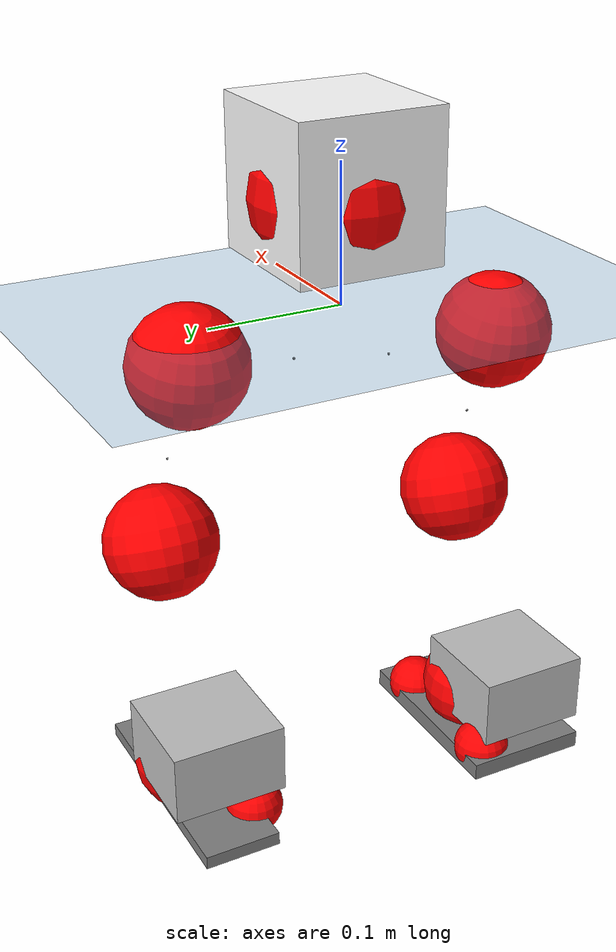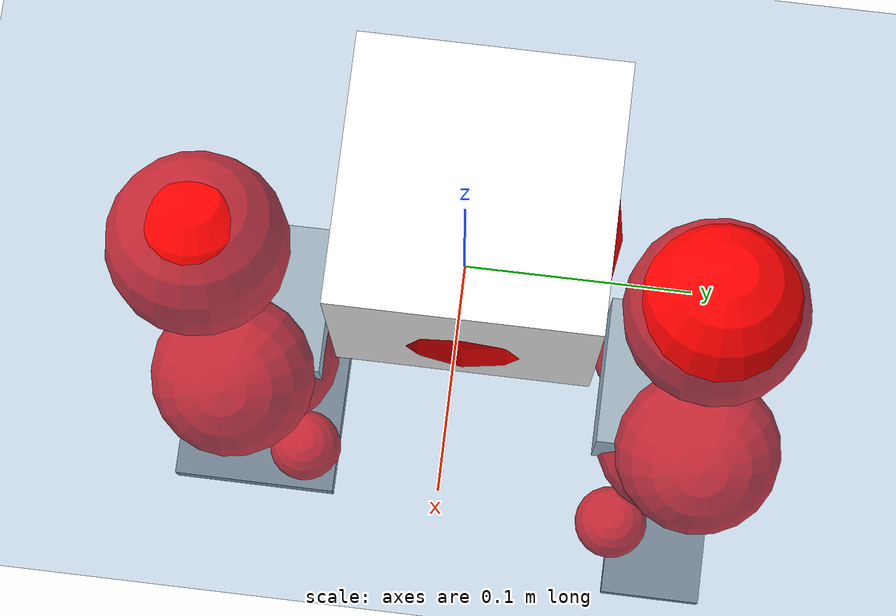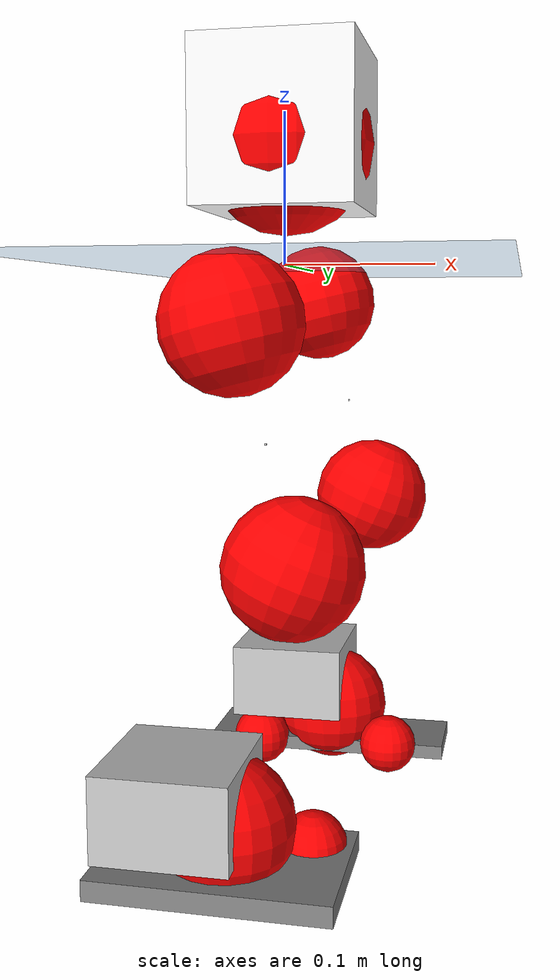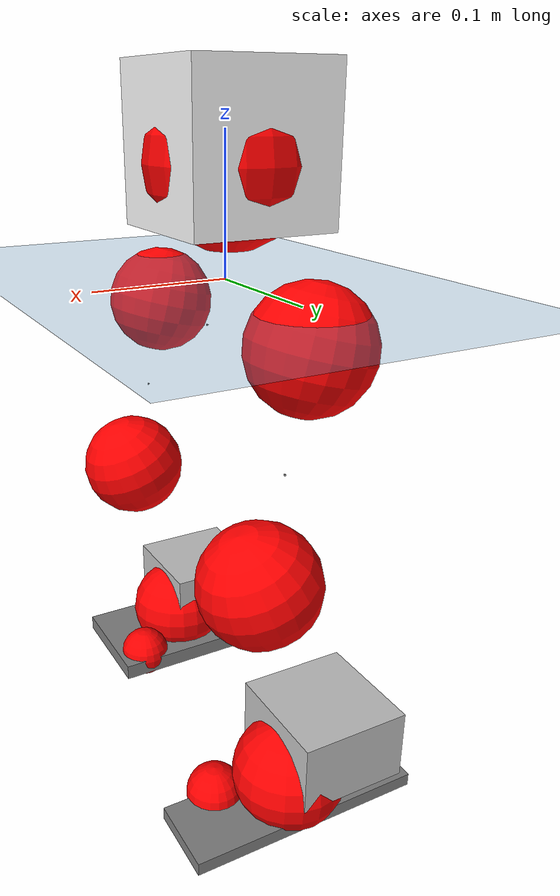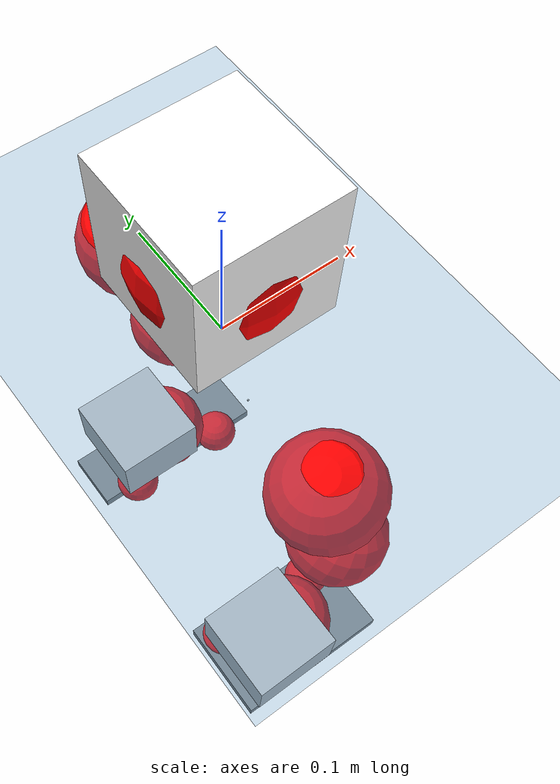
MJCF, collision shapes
<mujoco model="pi_12dof_release_v1">
  <compiler angle="radian" assetdir="assets" balanceinertia="true" inertiafromgeom="false"/>

  <option timestep="0.005" density="1.2" viscosity="2e-05"/>

  <size nkey="1"/>

  <visual>
    <quality shadowsize="8192"/>
    <map shadowclip="0.5"/>
  </visual>

  <default>
    <default class="/">
      <joint armature="0.01" damping="0.01" frictionloss="0.01"/>
      <geom contype="0" conaffinity="0" group="1" solref="-1000 -80"/>
      <site size="0.01 0.005 0.005" group="5"/>
      <general forcelimited="true" biastype="affine" gainprm="20" biasprm="0 -20 -0.5"/>
      <default class="foot">
        <geom size="0.0845 0.036 0.005" type="box" condim="6" group="4" priority="1" friction="0.9 0.2 0.2" solimp="0.015 1 0.005"/>
      </default>
      <default class="reward_collision_sphere">
        <geom group="5" rgba="1 0 0 1"/>
      </default>
    </default>
  </default>

  <asset>
    <texture type="skybox" colorspace="auto" name="//unnamed_texture_0" builtin="gradient" rgb1="0.95 0.95 0.95" rgb2="0.95 0.95 0.95" width="100" height="600"/>
    <texture type="2d" colorspace="auto" name="texplane" builtin="checker" rgb1="0.345 0.575 0.748" rgb2="0.345 0.575 0.748" markrgb="1 1 1" width="512" height="512"/>
    <material name="MatPlane" class="/" texture="texplane" texuniform="true" texrepeat="2 2" specular="0.9"/>
    <mesh name="baselink_1" class="/" file="baselink_1.STL"/>
    <mesh name="r_hip_pitch_link" class="/" file="r_hip_pitch_link.STL"/>
    <mesh name="r_hip_roll_link" class="/" file="r_hip_roll_link.STL"/>
    <mesh name="r_thigh_link" class="/" file="r_thigh_link.STL"/>
    <mesh name="r_calf_link" class="/" file="r_calf_link.STL"/>
    <mesh name="r_ankle_pitch_link" class="/" file="r_ankle_pitch_link.STL"/>
    <mesh name="r_ankle_roll_link" class="/" file="r_ankle_roll_link.STL"/>
    <mesh name="l_hip_pitch_link" class="/" file="l_hip_pitch_link.STL"/>
    <mesh name="l_hip_roll_link" class="/" file="l_hip_roll_link.STL"/>
    <mesh name="l_thigh_link" class="/" file="l_thigh_link.STL"/>
    <mesh name="l_calf_link" class="/" file="l_calf_link.STL"/>
    <mesh name="l_ankle_pitch_link" class="/" file="l_ankle_pitch_link.STL"/>
    <mesh name="l_ankle_roll_link" class="/" file="l_ankle_roll_link.STL"/>
  </asset>

  <worldbody>
    <geom name="floor" class="/" size="100 100 0.125" type="plane" group="0" material="MatPlane"/>
    <light name="toplight_shadow" class="/" pos="0 0 5" dir="0.0990148 0.0990148 -0.990148" type="directional" ambient="0.04 0.04 0.04" diffuse="0.55 0.55 0.55" specular="0.12 0.12 0.12"/>
    <light name="toplight_fill" class="/" pos="0 0 5" dir="0.0990148 0.0990148 -0.990148" type="directional" castshadow="false" ambient="0.04 0.04 0.04" diffuse="0.3 0.3 0.3" specular="0.08 0.08 0.08"/>
    <body name="trunk" pos="-0.000100736 0.00528434 0.00203989" quat="1 8.31009e-05 -0.000123856 8.47402e-07">
      <inertial pos="0.00223496 0.00588256 0.0438987" quat="0.719385 0.00274226 -0.0251503 0.694151" mass="2.70624" diaginertia="0.00224771 0.0453642 0.0064492"/>
      <joint name="//unnamed_joint_0" type="free"/>
      <geom name="//unnamed_geom_1" class="/" type="mesh" density="0" rgba="1 1 1 1" mesh="baselink_1"/>
      <geom name="//unnamed_geom_2" class="/" size="0.0535558 0.0535558 0.0535558" pos="0 0 0.0872439" type="box" rgba="1 1 1 1"/>
      <geom name="//unnamed_geom_3" class="reward_collision_sphere" size="0.0589113" pos="0 0 0.0763384"/>
      <site name="imu" class="/" pos="-0.0248053 -0.0135548 0.0263465" size="0.0107112"/>
      <camera name="track" class="/" pos="0 -2.76135 0" quat="0.707107 0.707107 0 0" mode="trackcom"/>
      <camera name="ego_camera" class="/" pos="0.055659 0 0.196299" quat="-0.5 -0.5 0.5 0.5"/>
      <body name="r_hip_pitch_link" pos="-0.00379758 -0.041513 -0.0435352" quat="0.992293 0.00271123 -0.123883 -0.000547888">
        <inertial pos="-0.000237987 -0.0773556 -0.00214442" quat="-0.0149089 0.704389 -0.0194734 0.70939" mass="0.475386" diaginertia="2.43795e-05 0.000534043 0.00012536"/>
        <joint name="r_hip_pitch_joint" class="/" pos="0 0 0" axis="-0.000164786 -0.999992 0.00404815" stiffness="0.00456527" range="-1.74818 1.29953" armature="0.0113932" damping="0.0148055" frictionloss="0.0102436"/>
        <geom name="//unnamed_geom_4" class="/" type="mesh" density="0" rgba="0.75294 0.75294 0.75294 1" mesh="r_hip_pitch_link"/>
        <geom name="//unnamed_geom_5" class="/" size="0.000535558 0.000535558 0.000535558" type="box" rgba="0.75294 0.75294 0.75294 1"/>
        <body name="r_hip_roll_link" pos="-0.000110111 -0.0878378 0.00370247" quat="0.999998 4.49078e-05 -0.00196399 0.000974636">
          <inertial pos="-0.0056122 -0.00274719 -0.0691635" quat="0.707333 -0.0482457 -0.0948029 0.698831" mass="0.477601" diaginertia="7.89484e-05 0.00141676 0.000202106"/>
          <joint name="r_hip_roll_joint" class="/" pos="0 0 0" axis="-0.999825 -0.0186966 0.000238471" stiffness="0.0150358" range="-0.144273 0.377378" armature="0.0129325" damping="0.0667577" frictionloss="0.009646"/>
          <geom name="//unnamed_geom_6" class="/" type="mesh" density="0" rgba="0.75294 0.75294 0.75294 1" mesh="r_hip_roll_link"/>
          <geom name="//unnamed_geom_7" class="/" size="0.000535558 0.000535558 0.000535558" type="box" rgba="0.75294 0.75294 0.75294 1"/>
          <geom name="//unnamed_geom_8" class="reward_collision_sphere" size="0.0428446"/>
          <body name="r_thigh_link" pos="-0.000164827 0.00774148 -0.0723706" quat="0.999999 -0.000609727 0.000981619 2.21219e-05">
            <inertial pos="-0.00359001 0.00183087 -0.0428988" quat="0.737259 0.67561 -0.000156349 -9.23433e-05" mass="0.135497" diaginertia="2.99914e-05 0.00042728 9.91256e-05"/>
            <joint name="r_thigh_joint" class="/" pos="0 0 0" axis="0.014588 0.00179373 -0.999892" stiffness="0.0139254" range="-0.21615 0.580668" armature="0.0113838" damping="0.0103526" frictionloss="0.0111366"/>
            <geom name="//unnamed_geom_9" class="/" type="mesh" density="0" rgba="0.75294 0.75294 0.75294 1" mesh="r_thigh_link"/>
            <geom name="//unnamed_geom_10" class="/" size="0.000535558 0.000535558 0.000535558" type="box" rgba="0.75294 0.75294 0.75294 1"/>
            <body name="r_calf_link" pos="-0.00197631 -0.00192019 -0.0742662" quat="0.947652 -1.04767e-06 0.319305 -2.12075e-06">
              <inertial pos="8.50997e-05 -0.000379144 -0.0751199" quat="0.999902 -4.48252e-05 0.000984575 0.0139322" mass="1.11229" diaginertia="0.000810452 0.0202101 0.000256687"/>
              <joint name="r_calf_joint" class="/" pos="0 0 0" axis="-0.00756402 -0.99991 0.0110649" stiffness="0.00956854" range="-1.84401 0.603533" armature="0.0103292" damping="0.00347256" frictionloss="0.0096727"/>
              <geom name="//unnamed_geom_11" class="/" type="mesh" density="0" rgba="0.75294 0.75294 0.75294 1" mesh="r_calf_link"/>
              <geom name="//unnamed_geom_12" class="/" size="0.000535558 0.000535558 0.000535558" type="box" rgba="0.75294 0.75294 0.75294 1"/>
              <geom name="//unnamed_geom_13" class="reward_collision_sphere" size="0.0428446"/>
              <body name="r_ankle_pitch_link" pos="-0.00806355 -0.00920395 -0.156098" quat="0.980016 0.000927837 -0.198919 0.000161483">
                <inertial pos="0.00536903 0.0140525 -0.00254125" quat="-0.00978309 0.700328 -0.00504118 0.713736" mass="0.188746" diaginertia="6.56216e-05 0.00102283 0.000172194"/>
                <joint name="r_ankle_pitch_joint" class="/" pos="0 0 0" axis="-0.0187743 -0.999184 0.0357623" stiffness="0.00280624" range="-1.33322 0.343314" armature="0.0116157" damping="0" frictionloss="0.0109638"/>
                <geom name="//unnamed_geom_14" class="/" type="mesh" density="0" rgba="0.75294 0.75294 0.75294 1" mesh="r_ankle_pitch_link"/>
                <geom name="//unnamed_geom_15" class="/" size="0.0417735 0.0428446 0.0267779" type="box" rgba="0.75294 0.75294 0.75294 1"/>
                <body name="r_ankle_roll_link" pos="0.0643381 0.00695265 0.00370825" quat="0.999995 0.00157695 0.000478611 -0.00285723">
                  <inertial pos="-0.0181654 0.000894825 -0.0199257" quat="0.551971 0.442587 0.427348 0.562866" mass="0.654342" diaginertia="0.000258601 0.00515661 0.000437988"/>
                  <joint name="r_ankle_roll_joint" class="/" pos="0 0 0" axis="-0.999997 0.00221758 -0.00114108" range="0.0244453 0.168988" armature="0.0109806" damping="0" frictionloss="0.0118423"/>
                  <geom name="//unnamed_geom_16" class="/" type="mesh" density="0" rgba="0.75294 0.75294 0.75294 1" mesh="r_ankle_roll_link"/>
                  <geom name="//unnamed_geom_17" class="/" type="mesh" rgba="0.75294 0.75294 0.75294 1" mesh="r_ankle_roll_link"/>
                  <geom name="right_foot" class="foot" size="0.0745675 0.0472503 0.00652482" pos="-0.0378481 0 -0.0479842"/>
                  <geom name="//unnamed_geom_19" class="reward_collision_sphere" size="0.0428446" pos="-0.037106 0 -0.021811"/>
                  <geom name="//unnamed_geom_20" class="reward_collision_sphere" size="0.0214223" pos="0.0111318 0.0276135 -0.043622"/>
                  <geom name="//unnamed_geom_21" class="reward_collision_sphere" size="0.0214223" pos="-0.0890544 0.0276135 -0.043622"/>
                  <site name="right_foot" class="foot" pos="-0.0378481 0 -0.0479842" size="0.0107112"/>
                </body>
              </body>
            </body>
          </body>
        </body>
      </body>
      <body name="l_hip_pitch_link" pos="0.0013387 0.031036 -0.0347672" quat="0.992203 5.63698e-05 -0.124632 -2.88337e-05">
        <inertial pos="0.00132836 0.0810831 -0.00264526" quat="-0.0394994 0.704726 0.0309247 0.707704" mass="0.474705" diaginertia="2.83902e-05 0.000519115 0.000152604"/>
        <joint name="l_hip_pitch_joint" class="/" pos="0 0 0" axis="0.000115885 1 0.000246999" range="-1.23796 1.74048" armature="0.00990548" damping="0.0326244" frictionloss="0.00860411"/>
        <geom name="//unnamed_geom_22" class="/" type="mesh" density="0" rgba="0.75294 0.75294 0.75294 1" mesh="l_hip_pitch_link"/>
        <geom name="//unnamed_geom_23" class="/" size="0.000535558 0.000535558 0.000535558" type="box" rgba="0.75294 0.75294 0.75294 1"/>
        <body name="l_hip_roll_link" pos="0.00322999 0.0781457 0.00859796" quat="1 9.3425e-05 -0.000173505 9.27123e-05">
          <inertial pos="0.00322187 -0.00178909 -0.0581526" quat="0.700857 -0.0810267 -0.0904539 0.702888" mass="0.417496" diaginertia="7.386e-05 0.0013656 0.000191915"/>
          <joint name="l_hip_roll_joint" class="/" pos="0 0 0" axis="-0.999607 0.0046148 0.0276377" stiffness="0.0039691" range="-0.339586 0.115028" armature="0.00756809" damping="0.0118577" frictionloss="0.0104272"/>
          <geom name="//unnamed_geom_24" class="/" type="mesh" density="0" rgba="0.75294 0.75294 0.75294 1" mesh="l_hip_roll_link"/>
          <geom name="//unnamed_geom_25" class="/" size="0.000535558 0.000535558 0.000535558" type="box" rgba="0.75294 0.75294 0.75294 1"/>
          <geom name="//unnamed_geom_26" class="reward_collision_sphere" size="0.0428446"/>
          <body name="l_thigh_link" pos="0.00289319 0.00947656 -0.0783588" quat="1 -0.000178516 -0.000204639 0.000107533">
            <inertial pos="-0.000534821 -0.00283704 -0.0542648" quat="0.677867 0.735131 -0.00358004 0.0081269" mass="0.127731" diaginertia="2.47625e-05 0.000445524 8.51866e-05"/>
            <joint name="l_thigh_joint" class="/" pos="0 0 0" axis="-0.000343317 -0.00036872 -1" range="-0.567829 0.291951" armature="0.0125307" damping="0" frictionloss="0.01101"/>
            <geom name="//unnamed_geom_27" class="/" type="mesh" density="0" rgba="0.75294 0.75294 0.75294 1" mesh="l_thigh_link"/>
            <geom name="//unnamed_geom_28" class="/" size="0.000535558 0.000535558 0.000535558" type="box" rgba="0.75294 0.75294 0.75294 1"/>
            <body name="l_calf_link" pos="-0.000965548 0.00138798 -0.0760862" quat="0.947217 -0.000568538 0.320579 -0.00293263">
              <inertial pos="0.000849509 -0.00109229 -0.0723071" quat="0.999992 0.00111138 -0.00319011 0.00217148" mass="0.987075" diaginertia="0.000717275 0.0168355 0.000234864"/>
              <joint name="l_calf_joint" class="/" pos="0 0 0" axis="-0.0152766 0.999832 -0.0101582" stiffness="0.00131736" range="-0.628833 1.66967" armature="0.0109607" damping="0.0102942" frictionloss="0.0105712"/>
              <geom name="//unnamed_geom_29" class="/" type="mesh" density="0" rgba="0.75294 0.75294 0.75294 1" mesh="l_calf_link"/>
              <geom name="//unnamed_geom_30" class="/" size="0.000535558 0.000535558 0.000535558" type="box" rgba="0.75294 0.75294 0.75294 1"/>
              <geom name="//unnamed_geom_31" class="reward_collision_sphere" size="0.0428446"/>
              <body name="l_ankle_pitch_link" pos="0.00175288 -0.00421752 -0.154484" quat="0.979403 0.00126416 -0.201911 0.000648661">
                <inertial pos="0.00424768 0.006221 -0.00295571" quat="-0.00647724 0.704531 0.0042378 0.709631" mass="0.22964" diaginertia="7.37369e-05 0.0011786 0.000192383"/>
                <joint name="l_ankle_pitch_joint" class="/" pos="0 0 0" axis="-0.0102389 0.999943 -0.00299362" stiffness="0.000704009" range="-0.396753 1.23388" armature="0.0117995" damping="0.0118512" frictionloss="0.0108193"/>
                <geom name="//unnamed_geom_32" class="/" type="mesh" density="0" rgba="0.75294 0.75294 0.75294 1" mesh="l_ankle_pitch_link"/>
                <geom name="//unnamed_geom_33" class="/" size="0.0417735 0.0428446 0.0267779" type="box" rgba="0.75294 0.75294 0.75294 1"/>
                <body name="l_ankle_roll_link" pos="0.0658793 0.00175155 -0.00454646" quat="1 -0.000586691 0.000500856 0.000278201">
                  <inertial pos="-0.0275311 0.000519259 -0.0162282" quat="0.561023 0.432618 0.433525 0.556912" mass="0.628771" diaginertia="0.000233477 0.00521028 0.000449302"/>
                  <joint name="l_ankle_roll_joint" class="/" pos="0 0 0" axis="-0.998971 -0.0444276 -0.00913796" stiffness="0.00441448" range="-0.33227 0.252008" armature="0.00682317" damping="0" frictionloss="0.0141662"/>
                  <geom name="//unnamed_geom_34" class="/" type="mesh" density="0" rgba="0.75294 0.75294 0.75294 1" mesh="l_ankle_roll_link"/>
                  <geom name="//unnamed_geom_35" class="/" type="mesh" rgba="0.75294 0.75294 0.75294 1" mesh="l_ankle_roll_link"/>
                  <geom name="left_foot" class="foot" size="0.0907038 0.0287568 0.00500557" pos="-0.0378481 0 -0.0479842"/>
                  <geom name="//unnamed_geom_37" class="reward_collision_sphere" size="0.0428446" pos="-0.037106 0 -0.021811"/>
                  <geom name="//unnamed_geom_38" class="reward_collision_sphere" size="0.0214223" pos="0.0111318 -0.0276135 -0.043622"/>
                  <geom name="//unnamed_geom_39" class="reward_collision_sphere" size="0.0214223" pos="-0.0890544 -0.0276135 -0.043622"/>
                  <site name="left_foot" class="foot" pos="-0.0378481 0 -0.0479842" size="0.0107112"/>
                </body>
              </body>
            </body>
          </body>
        </body>
      </body>
    </body>
  </worldbody>

  <contact>
    <pair class="/" geom1="floor" geom2="right_foot" name="//unnamed_contact_1"/>
    <pair class="/" geom1="floor" geom2="left_foot" name="//unnamed_contact_0"/>
  </contact>

  <actuator>
    <general name="r_hip_pitch_joint" class="/" joint="r_hip_pitch_joint" forcerange="-21.979 21.979" gainprm="23.0454" biasprm="0 -23.0454 -0.546865"/>
    <general name="r_hip_roll_joint" class="/" joint="r_hip_roll_joint" forcerange="-22.1317 22.1317" gainprm="23.0454" biasprm="0 -23.0454 -0.546865"/>
    <general name="r_thigh_joint" class="/" joint="r_thigh_joint" forcerange="-19.1527 19.1527" gainprm="23.0454" biasprm="0 -23.0454 -0.546865"/>
    <general name="r_calf_joint" class="/" joint="r_calf_joint" forcerange="-28.311 28.311" gainprm="23.0454" biasprm="0 -23.0454 -0.546865"/>
    <general name="r_ankle_pitch_joint" class="/" joint="r_ankle_pitch_joint" forcerange="-15.8178 15.8178" gainprm="23.0454" biasprm="0 -23.0454 -0.546865"/>
    <general name="r_ankle_roll_joint" class="/" joint="r_ankle_roll_joint" forcerange="-15.7443 15.7443" gainprm="23.0454" biasprm="0 -23.0454 -0.546865"/>
    <general name="l_hip_pitch_joint" class="/" joint="l_hip_pitch_joint" forcerange="-14.4209 14.4209" gainprm="23.0454" biasprm="0 -23.0454 -0.546865"/>
    <general name="l_hip_roll_joint" class="/" joint="l_hip_roll_joint" forcerange="-25.8607 25.8607" gainprm="23.0454" biasprm="0 -23.0454 -0.546865"/>
    <general name="l_thigh_joint" class="/" joint="l_thigh_joint" forcerange="-22.2712 22.2712" gainprm="23.0454" biasprm="0 -23.0454 -0.546865"/>
    <general name="l_calf_joint" class="/" joint="l_calf_joint" forcerange="-15.7992 15.7992" gainprm="23.0454" biasprm="0 -23.0454 -0.546865"/>
    <general name="l_ankle_pitch_joint" class="/" joint="l_ankle_pitch_joint" forcerange="-15.7698 15.7698" gainprm="23.0454" biasprm="0 -23.0454 -0.546865"/>
    <general name="l_ankle_roll_joint" class="/" joint="l_ankle_roll_joint" forcerange="-19.2844 19.2844" gainprm="23.0454" biasprm="0 -23.0454 -0.546865"/>
  </actuator>

  <sensor>
    <gyro site="imu" name="imu_angular_velocity"/>
    <velocimeter site="imu" name="imu_linear_velocity"/>
    <framelinvel objtype="site" objname="left_foot" name="left_foot_global_linear_velocity"/>
    <framelinvel objtype="site" objname="right_foot" name="right_foot_global_linear_velocity"/>
  </sensor>

  <keyframe>
    <key name="home" qpos="0 0 0.291 1 0 0 0 0.4 0 0 -0.8 0.4 0 -0.4 0 0 0.8 -0.4 0"/>
  </keyframe>
</mujoco>
